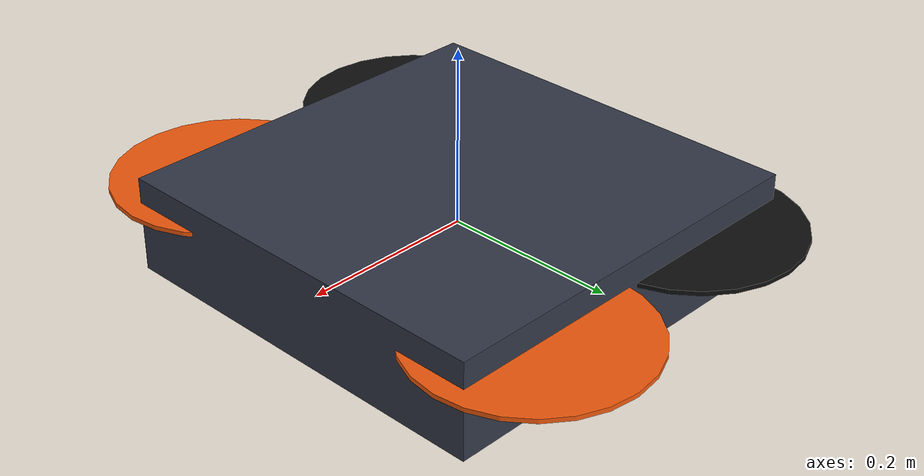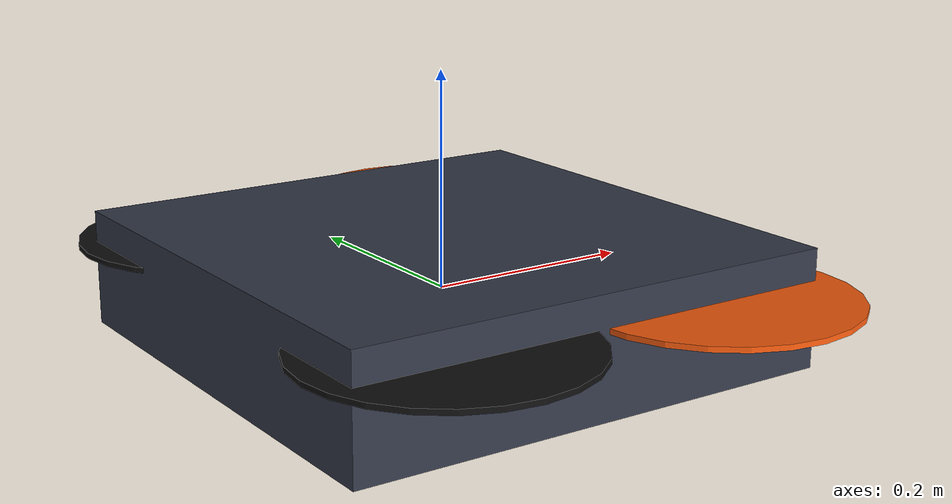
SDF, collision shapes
<?xml version="1.0"?>
<sdf version="1.6">
  <model name="iris_quad">
    <link name="base_link">
      <pose>0 0 0 0 0 0</pose>
      <inertial>
        <pose>0 0 0 0 0 0</pose>
        <mass>1.5</mass>
        <inertia>
          <ixx>0.029125</ixx>
          <ixy>0</ixy>
          <ixz>0</ixz>
          <iyy>0.029125</iyy>
          <iyz>0</iyz>
          <izz>0.055225</izz>
        </inertia>
      </inertial>
      <collision name="base_link_collision">
        <pose>0 0 0 0 0 0</pose>
        <geometry>
          <box>
            <size>0.47 0.47 0.11</size>
          </box>
        </geometry>
        <surface>
          <contact>
            <ode>
              <min_depth>0.001</min_depth>
              <max_vel>0</max_vel>
            </ode>
          </contact>
          <friction>
            <ode/>
          </friction>
        </surface>
      </collision>
      <visual name="base_link_visual">
        <pose>0 0 0 0 0 0</pose>
        <geometry>
          <mesh>
            <scale>1 1 1</scale>
            <uri>model://iris_quad/meshes/iris.stl</uri>
          </mesh>
        </geometry>
        <!-- A dark "gunmetal" slate-blue rather than flat grey - the specular
             highlight is bumped up too so it catches the scene light instead
             of looking matte/flat from every angle. -->
        <material>
          <ambient>0.10 0.11 0.14 1</ambient>
          <diffuse>0.20 0.22 0.28 1</diffuse>
          <specular>0.45 0.45 0.5 1</specular>
        </material>
      </visual>
      <gravity>true</gravity>
    </link>

    <!-- Rotor 0: front-right, spins CCW -->
    <link name="rotor_0">
      <pose>0.13 -0.22 0.023 0 0 0</pose>
      <inertial>
        <pose>0 0 0 0 0 0</pose>
        <mass>0.005</mass>
        <inertia>
          <ixx>9.75e-07</ixx>
          <ixy>0</ixy>
          <ixz>0</ixz>
          <iyy>0.000273104</iyy>
          <iyz>0</iyz>
          <izz>0.000274004</izz>
        </inertia>
      </inertial>
      <collision name="rotor_0_collision">
        <pose>0 0 0 0 0 0</pose>
        <geometry>
          <cylinder>
            <length>0.005</length>
            <radius>0.128</radius>
          </cylinder>
        </geometry>
        <surface>
          <contact>
            <ode/>
          </contact>
          <friction>
            <ode/>
          </friction>
        </surface>
      </collision>
      <visual name="rotor_0_visual">
        <pose>0 0 0 0 0 0</pose>
        <geometry>
          <mesh>
            <scale>1 1 1</scale>
            <uri>model://iris_quad/meshes/iris_prop_ccw.dae</uri>
          </mesh>
        </geometry>
        <material>
          <ambient>0.55 0.18 0.03 1</ambient>
          <diffuse>0.95 0.35 0.05 1</diffuse>
          <specular>0.3 0.3 0.3 1</specular>
        </material>
      </visual>
      <gravity>true</gravity>
    </link>
    <joint name="rotor_0_joint" type="revolute">
      <child>rotor_0</child>
      <parent>base_link</parent>
      <axis>
        <xyz>0 0 1</xyz>
        <limit>
          <lower>-1e+16</lower>
          <upper>1e+16</upper>
        </limit>
        <dynamics>
          <spring_reference>0</spring_reference>
          <spring_stiffness>0</spring_stiffness>
        </dynamics>
        <use_parent_model_frame>true</use_parent_model_frame>
      </axis>
    </joint>

    <!-- Rotor 1: back-left, spins CCW -->
    <link name="rotor_1">
      <pose>-0.13 0.2 0.023 0 0 0</pose>
      <inertial>
        <pose>0 0 0 0 0 0</pose>
        <mass>0.005</mass>
        <inertia>
          <ixx>9.75e-07</ixx>
          <ixy>0</ixy>
          <ixz>0</ixz>
          <iyy>0.000273104</iyy>
          <iyz>0</iyz>
          <izz>0.000274004</izz>
        </inertia>
      </inertial>
      <collision name="rotor_1_collision">
        <pose>0 0 0 0 0 0</pose>
        <geometry>
          <cylinder>
            <length>0.005</length>
            <radius>0.128</radius>
          </cylinder>
        </geometry>
        <surface>
          <contact>
            <ode/>
          </contact>
          <friction>
            <ode/>
          </friction>
        </surface>
      </collision>
      <visual name="rotor_1_visual">
        <pose>0 0 0 0 0 0</pose>
        <geometry>
          <mesh>
            <scale>1 1 1</scale>
            <uri>model://iris_quad/meshes/iris_prop_ccw.dae</uri>
          </mesh>
        </geometry>
        <!-- Back rotors kept matte black, contrasting with the orange front
             pair above - the same "know which way it's facing" idea. -->
        <material>
          <ambient>0.03 0.03 0.03 1</ambient>
          <diffuse>0.06 0.06 0.06 1</diffuse>
          <specular>0.2 0.2 0.2 1</specular>
        </material>
      </visual>
      <gravity>true</gravity>
    </link>
    <joint name="rotor_1_joint" type="revolute">
      <child>rotor_1</child>
      <parent>base_link</parent>
      <axis>
        <xyz>0 0 1</xyz>
        <limit>
          <lower>-1e+16</lower>
          <upper>1e+16</upper>
        </limit>
        <dynamics>
          <spring_reference>0</spring_reference>
          <spring_stiffness>0</spring_stiffness>
        </dynamics>
        <use_parent_model_frame>true</use_parent_model_frame>
      </axis>
    </joint>

    <!-- Rotor 2: front-left, spins CW -->
    <link name="rotor_2">
      <pose>0.13 0.22 0.023 0 0 0</pose>
      <inertial>
        <pose>0 0 0 0 0 0</pose>
        <mass>0.005</mass>
        <inertia>
          <ixx>9.75e-07</ixx>
          <ixy>0</ixy>
          <ixz>0</ixz>
          <iyy>0.000273104</iyy>
          <iyz>0</iyz>
          <izz>0.000274004</izz>
        </inertia>
      </inertial>
      <collision name="rotor_2_collision">
        <pose>0 0 0 0 0 0</pose>
        <geometry>
          <cylinder>
            <length>0.005</length>
            <radius>0.128</radius>
          </cylinder>
        </geometry>
        <surface>
          <contact>
            <ode/>
          </contact>
          <friction>
            <ode/>
          </friction>
        </surface>
      </collision>
      <visual name="rotor_2_visual">
        <pose>0 0 0 0 0 0</pose>
        <geometry>
          <mesh>
            <scale>1 1 1</scale>
            <uri>model://iris_quad/meshes/iris_prop_cw.dae</uri>
          </mesh>
        </geometry>
        <material>
          <ambient>0.55 0.18 0.03 1</ambient>
          <diffuse>0.95 0.35 0.05 1</diffuse>
          <specular>0.3 0.3 0.3 1</specular>
        </material>
      </visual>
      <gravity>true</gravity>
    </link>
    <joint name="rotor_2_joint" type="revolute">
      <child>rotor_2</child>
      <parent>base_link</parent>
      <axis>
        <xyz>0 0 1</xyz>
        <limit>
          <lower>-1e+16</lower>
          <upper>1e+16</upper>
        </limit>
        <dynamics>
          <spring_reference>0</spring_reference>
          <spring_stiffness>0</spring_stiffness>
        </dynamics>
        <use_parent_model_frame>true</use_parent_model_frame>
      </axis>
    </joint>

    <!-- Rotor 3: back-right, spins CW -->
    <link name="rotor_3">
      <pose>-0.13 -0.2 0.023 0 0 0</pose>
      <inertial>
        <pose>0 0 0 0 0 0</pose>
        <mass>0.005</mass>
        <inertia>
          <ixx>9.75e-07</ixx>
          <ixy>0</ixy>
          <ixz>0</ixz>
          <iyy>0.000273104</iyy>
          <iyz>0</iyz>
          <izz>0.000274004</izz>
        </inertia>
      </inertial>
      <collision name="rotor_3_collision">
        <pose>0 0 0 0 0 0</pose>
        <geometry>
          <cylinder>
            <length>0.005</length>
            <radius>0.128</radius>
          </cylinder>
        </geometry>
        <surface>
          <contact>
            <ode/>
          </contact>
          <friction>
            <ode/>
          </friction>
        </surface>
      </collision>
      <visual name="rotor_3_visual">
        <pose>0 0 0 0 0 0</pose>
        <geometry>
          <mesh>
            <scale>1 1 1</scale>
            <uri>model://iris_quad/meshes/iris_prop_cw.dae</uri>
          </mesh>
        </geometry>
        <!-- Back rotors kept matte black, contrasting with the orange front
             pair above - the same "know which way it's facing" idea. -->
        <material>
          <ambient>0.03 0.03 0.03 1</ambient>
          <diffuse>0.06 0.06 0.06 1</diffuse>
          <specular>0.2 0.2 0.2 1</specular>
        </material>
      </visual>
      <gravity>true</gravity>
    </link>
    <joint name="rotor_3_joint" type="revolute">
      <child>rotor_3</child>
      <parent>base_link</parent>
      <axis>
        <xyz>0 0 1</xyz>
        <limit>
          <lower>-1e+16</lower>
          <upper>1e+16</upper>
        </limit>
        <dynamics>
          <spring_reference>0</spring_reference>
          <spring_stiffness>0</spring_stiffness>
        </dynamics>
        <use_parent_model_frame>true</use_parent_model_frame>
      </axis>
    </joint>

    <link name="camera_link">
      <pose>0 0 -0.08 0 1.5708 0</pose>
      <inertial>
        <mass>0.05</mass>
        <inertia>
          <ixx>1e-05</ixx>
          <ixy>0</ixy>
          <ixz>0</ixz>
          <iyy>1e-05</iyy>
          <iyz>0</iyz>
          <izz>1e-05</izz>
        </inertia>
      </inertial>
      <collision name="camera_link_collision">
        <geometry>
          <box>
            <size>0.03 0.03 0.03</size>
          </box>
        </geometry>
      </collision>
      <visual name="camera_link_visual">
        <geometry>
          <box>
            <size>0.03 0.03 0.03</size>
          </box>
        </geometry>
        <!-- Near-black, slightly glossy - reads as a small camera/lens
             housing rather than a plain grey box. -->
        <material>
          <ambient>0.02 0.02 0.02 1</ambient>
          <diffuse>0.05 0.05 0.05 1</diffuse>
          <specular>0.5 0.5 0.5 1</specular>
        </material>
      </visual>
      <sensor name="rgbd_camera" type="rgbd_camera">
        <pose>0 0 0 0 0 0</pose>
        <always_on>true</always_on>
        <update_rate>10</update_rate>
        <visualize>true</visualize>
        <topic>iris_quad/rgbd_camera</topic>
        <camera>
          <horizontal_fov>1.047</horizontal_fov>
          <image>
            <width>320</width>
            <height>240</height>
          </image>
          <clip>
            <near>0.1</near>
            <far>20.0</far>
          </clip>
        </camera>
      </sensor>
    </link>
    <joint name="camera_joint" type="fixed">
      <child>camera_link</child>
      <parent>base_link</parent>
    </joint>
  </model>
</sdf>
